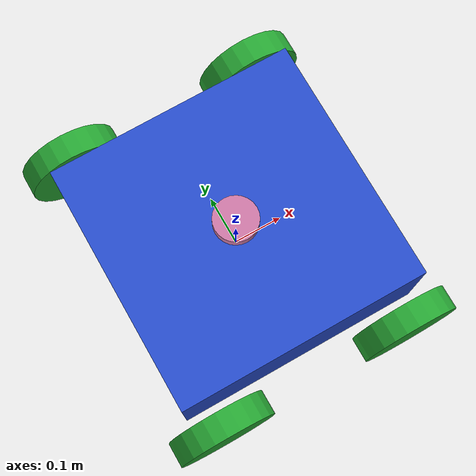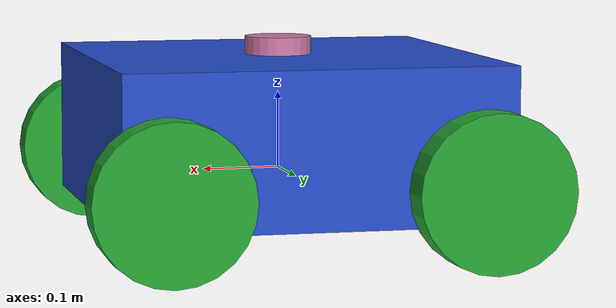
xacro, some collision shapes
<?xml version='1.0'?>

<robot name="fourbot" xmlns:xacro="http://www.ros.org/wiki/xacro">
	<xacro:property name="robot_name" value="fourbot" />
	<xacro:property name="robot_chassis_mass" value="15"/>
	<xacro:property name="robot_chassis_length" value="0.2"/>
	<xacro:property name="robot_chassis_radius" value="0.25"/>
	<xacro:property name="robot_caster_wheel_radius" value="0.05"/>
	<xacro:property name="robot_caster_wheel_radius_collision" value="0.0499"/>

	<xacro:property name="robot_wheel_mass" value="5"/>
	<xacro:property name="robot_wheel_length" value="0.05"/>
	<xacro:property name="robot_wheel_radius" value="0.1"/>

	<xacro:property name="camera_mass" value="0.1"/>
	<xacro:property name="hokoyu_mass" value="1e-5"/>
	<xacro:property name="depthcam_mass" value="1e-5"/>

	<!-- Make Chassis of Bot -->
	<link name="chassis">
		<pose>0 0 0.1 0 0 0</pose>

		<inertial>
			<mass value="${robot_chassis_mass}"/>
      		<origin xyz="0.0 0 0" rpy=" 0 0 0"/>

      		<inertia
      			ixx="0.147116667" ixy="0" ixz="0"
      			iyy="0.334951167" iyz="0"
      			izz="0.3978345"
      		/>
		</inertial>

		<collision name="collision">
			<origin xyz="0 0 0.05" rpy=" 0 0 0"/>
			<geometry>
				<box size="0.5 0.5 0.2"/>
			</geometry>
		</collision>

		<visual name="chassis_visual">
			<origin xyz="0 0 0.05" rpy=" 0 0 0"/>
			<geometry>
				<box size="0.5 0.5 0.2"/>
			</geometry>

		</visual>

	</link>

	<!-- Right Wheel Back -->
	<link name="right_wheel_back">
		<inertial>
			<mass value="${robot_wheel_mass}"/>
			<origin xyz="0 0 0" rpy="0 1.5707 1.5707"/>
			<inertia
				ixx="0.1" ixy="0.0" ixz="0.0"
				iyy="0.1" iyz="0.0"
				izz="0.1"
			/>
		</inertial>

		<visual>
			<origin xyz="0 0 0" rpy="0 1.5707 1.5707"/>
			<geometry>
				<cylinder radius="${robot_wheel_radius}" length="${robot_wheel_length}"/>
			</geometry>
		</visual>

		<collision>
			<origin xyz="0 0 0" rpy="0 1.5707 1.5707"/>
			<geometry>
				<cylinder radius="${robot_wheel_radius}" length="${robot_wheel_length}"/>
			</geometry>
		</collision>

	</link>

	<!-- Right Wheel Front-->
	<link name="right_wheel_front">
		<inertial>
			<mass value="${robot_wheel_mass}"/>
			<origin xyz="0 0 0" rpy="0 1.5707 1.5707"/>
			<inertia
				ixx="0.1" ixy="0.0" ixz="0.0"
				iyy="0.1" iyz="0.0"
				izz="0.1"
			/>
		</inertial>

		<visual>
			<origin xyz="0 0 0" rpy="0 1.5707 1.5707"/>
			<geometry>
				<cylinder radius="${robot_wheel_radius}" length="${robot_wheel_length}"/>
			</geometry>
		</visual>

		<collision>
			<origin xyz="0 0 0" rpy="0 1.5707 1.5707"/>
			<geometry>
				<cylinder radius="${robot_wheel_radius}" length="${robot_wheel_length}"/>
			</geometry>
		</collision>

	</link>

	<!-- Left wheel Back-->
	<link name="left_wheel_back">
		<inertial>
			<mass value="${robot_wheel_mass}"/>
			<origin xyz="0 0 0" rpy="0 1.5707 1.5707"/>
			<inertia
				ixx="0.1" ixy="0.0" ixz="0.0"
				iyy="0.1" iyz="0.0"
				izz="0.1"
			/>
		</inertial>

		<visual>
			<origin xyz="0 0 0" rpy="0 1.5707 1.5707"/>
			<geometry>
				<cylinder radius="${robot_wheel_radius}" length="${robot_wheel_length}"/>
			</geometry>
		</visual>

		<collision>
			<origin xyz="0 0 0" rpy="0 1.5707 1.5707"/>
			<geometry>
				<cylinder radius="${robot_wheel_radius}" length="${robot_wheel_length}"/>
			</geometry>
		</collision>

	</link>

	<!-- Left wheel Front-->
	<link name="left_wheel_front">
		<inertial>
			<mass value="${robot_wheel_mass}"/>
			<origin xyz="0 0 0" rpy="0 1.5707 1.5707"/>
			<inertia
				ixx="0.1" ixy="0.0" ixz="0.0"
				iyy="0.1" iyz="0.0"
				izz="0.1"
			/>
		</inertial>

		<visual>
			<origin xyz="0 0 0" rpy="0 1.5707 1.5707"/>
			<geometry>
				<cylinder radius="${robot_wheel_radius}" length="${robot_wheel_length}"/>
			</geometry>
		</visual>

		<collision>
			<origin xyz="0 0 0" rpy="0 1.5707 1.5707"/>
			<geometry>
				<cylinder radius="${robot_wheel_radius}" length="${robot_wheel_length}"/>
			</geometry>
		</collision>

	</link>

	<!-- Camera -->

	<!-- Hokuyo Lidar -->

	<!-- Depth Cam Kinect Link -->

	<!-- Project center to the ground -->
	<link name="robot_footprint"></link>

	<!-- Defining Joints -->

	<!-- Right Wheel Joint Back-->
	<joint type="continuous" name="right_wheel_hinge_back">
	    <origin xyz="-0.2 -0.30 0" rpy="0 0 0" />
	    <parent link="chassis"/>
	    <child link="right_wheel_back" />
	    <axis xyz="0 1 0" rpy="0 0 0" />
	    <limit effort="10000" velocity="1000" />
	    <dynamics damping="1.0" friction="1.0" />
	</joint>

	<!-- Right Wheel Joint Front-->
	<joint type="continuous" name="right_wheel_hinge_front">
	    <origin xyz="0.2 -0.30 0" rpy="0 0 0" />
	    <parent link="chassis"/>
	    <child link="right_wheel_front" />
	    <axis xyz="0 1 0" rpy="0 0 0" />
	    <limit effort="10000" velocity="1000" />
	    <dynamics damping="1.0" friction="1.0" />
	</joint>

	<!-- Left Wheel Joint Back-->
	<joint type="continuous" name="left_wheel_hinge_back">
	    <origin xyz="-0.2 0.30 0" rpy="0 0 0" />
	    <parent link="chassis"/>
	    <child link="left_wheel_back" />
	    <axis xyz="0 1 0" rpy="0 0 0" />
	    <limit effort="10000" velocity="1000" />
	    <dynamics damping="1.0" friction="1.0" />
	</joint>

	<!-- Left Wheel Joint Front-->
	<joint type="continuous" name="left_wheel_hinge_front">
	    <origin xyz="0.2 0.30 0" rpy="0 0 0" />
	    <parent link="chassis"/>
	    <child link="left_wheel_front" />
	    <axis xyz="0 1 0" rpy="0 0 0" />
	    <limit effort="10000" velocity="1000" />
	    <dynamics damping="1.0" friction="1.0" />
	</joint>

	<!-- Camera Joint -->

	<!-- Hokoyu Joint -->

	<!-- Depth Sensor Cam Joint -->

	<!-- Base Footprint Joint -->
	<joint name="robot_footprint_joint" type="fixed">
		<origin xyz="0 0 0" rpy="0 0 0" />
		<parent link="robot_footprint"/>
		<child link="chassis" />
	</joint>

	<!-- Color of the bot -->
	<gazebo reference="left_wheel_front">
		<material>Gazebo/Green</material>
		<kp>1000000.0</kp> <!-- kp and kd for rubber -->
		<kd>100.0</kd>
		<mu1>1.0</mu1>
		<mu2>1.0</mu2>
		<maxVel>1.0</maxVel>
		<minDepth>0.00</minDepth>
	</gazebo>

	<gazebo reference="left_wheel_back">
		<material>Gazebo/Green</material>
		<kp>1000000.0</kp> <!-- kp and kd for rubber -->
		<kd>100.0</kd>
		<mu1>1.0</mu1>
		<mu2>1.0</mu2>
		<maxVel>1.0</maxVel>
		<minDepth>0.00</minDepth>
	</gazebo>

	<gazebo reference="right_wheel_front">
		<material>Gazebo/Green</material>
		<kp>1000000.0</kp> <!-- kp and kd for rubber -->
		<kd>100.0</kd>
		<mu1>1.0</mu1>
		<mu2>1.0</mu2>
		<maxVel>1.0</maxVel>
		<minDepth>0.00</minDepth>
	</gazebo>
	<gazebo reference="right_wheel_back">
		<material>Gazebo/Green</material>
		<kp>1000000.0</kp> <!-- kp and kd for rubber -->
		<kd>100.0</kd>
		<mu1>1.0</mu1>
		<mu2>1.0</mu2>
		<maxVel>1.0</maxVel>
		<minDepth>0.00</minDepth>
	</gazebo>

	<gazebo reference="ouster_lidar">
		<material>Gazebo/Black</material>
	</gazebo>

	<gazebo reference="chassis">
		<material>Gazebo/Blue</material>
	</gazebo>

	<gazebo reference="ouster_lidar">
		<sensor type="ray" name="ouster_lidar">
		  <pose>0 0 0 0 0 0</pose>
		  <visualize>false</visualize>
		  <update_rate>10</update_rate>
		  <ray>
			<scan>
			  <vertical>
			  <samples>64</samples>
			  <resolution>1</resolution>
			  <min_angle>${-16.6*3.1415926535897931/180.0}</min_angle>
			  <max_angle>${16.6*3.1415926535897931/180.0}</max_angle>
			  </vertical>
			  <horizontal>
			  <samples>512</samples>
			  <resolution>1</resolution>
			  <min_angle>-3.1415926535897931</min_angle>
			  <max_angle>3.1415926535897931</max_angle>
			  </horizontal>
			</scan>
			<range>
				<min>0.8</min>
				<max>100</max>
				<resolution>0.03</resolution>
			</range>
			<noise>
			  <type>gaussian</type>
			  <mean>0.0</mean>
			  <stddev>0.000000000001</stddev>
			</noise>
		  </ray>
		  <plugin name="gazebo_ros_laser_controller" filename="libgazebo_ros_ouster_laser.so">
			<topicName>fourbot/os1_cloud_node/points</topicName>
			<frameName>ouster_lidar</frameName>
			<min_range>0.8</min_range>
			<max_range>100</max_range>
			<gaussianNoise>0.008</gaussianNoise>
		  </plugin>
		</sensor>
		</gazebo>

		<gazebo reference="ouster_imu">
			<sensor type="imu" name="ouster_imu_sensor">
			  <pose>0 0 0 0 0 0</pose>
			  <always_on>true</always_on>
			  <update_rate>100</update_rate>
			  <visualize>true</visualize>
			  <topic>fourbot/os1_cloud_node/imu</topic>
			</sensor>
		</gazebo>

		<!-- Ouster 3D Lidar -->

		<xacro:property name="file_visual" value="os1_64_reduced"/>
		<xacro:property name="gpu_str" value=""/>

		<joint name="ouster_joint" type="fixed">
			<origin xyz="0 0 0" rpy="0 0 0" />
			<parent link="chassis"/>
			<child link="ouster_sensor"/>
		</joint>

		<link name="ouster_sensor">
			<inertial>
				<mass value="0.425"/>
				<origin xyz="0 0 0.13675" rpy="0 0 0" />
				<inertia ixx="0.000308429" ixy="0" ixz="0"
						iyy="0.000308429" iyz="0" izz="0.00034589"/>
			</inertial>

			<collision name="lidar_collision">
				<origin xyz="0 0 0.13675" rpy="0 0 0" />
				<geometry>
				<cylinder radius="0.04350" length="0.07350"/>
				</geometry>
			</collision>

			<visual name="lidar_visual">
				<origin xyz="0 0 0.13675" rpy="0 0 0"/>
				<geometry>
				<mesh filename="package://fourbot/meshes/${file_visual}.stl" />
				</geometry>
			</visual>
		</link>

		<link name="ouster_lidar">
			<pose>0 0 0 0 0 3.1415926535897931</pose>
		</link>

		<joint name="ouster_lidar_joint" type="fixed">
			<parent link="ouster_sensor"/>
			<child link="ouster_lidar"/>
		</joint>

		<link name="ouster_imu"/>

		<joint name="ouster_imu_joint" type="fixed">
			<parent link="ouster_sensor"/>
			<child link="ouster_imu"/>
		</joint>

</robot>
